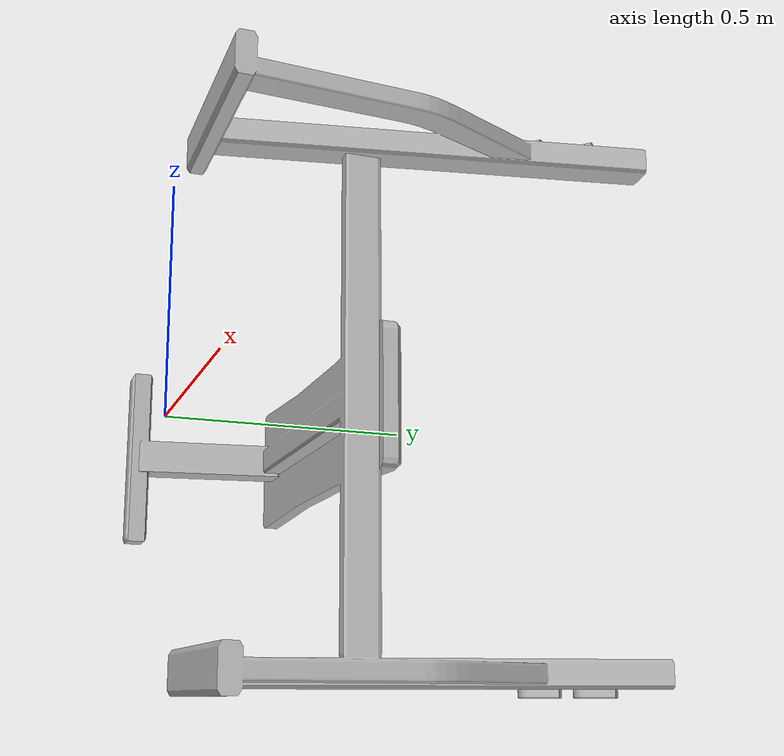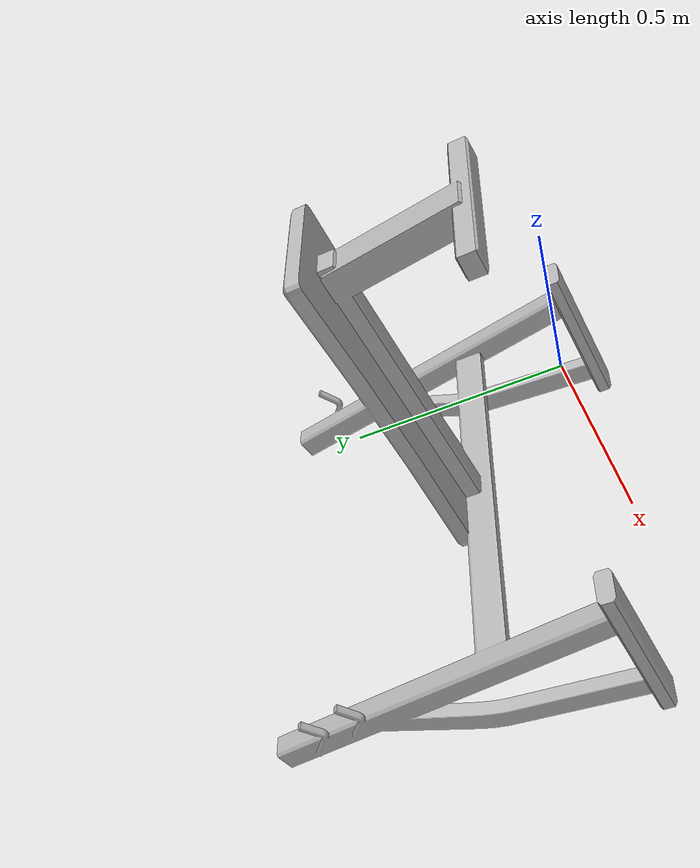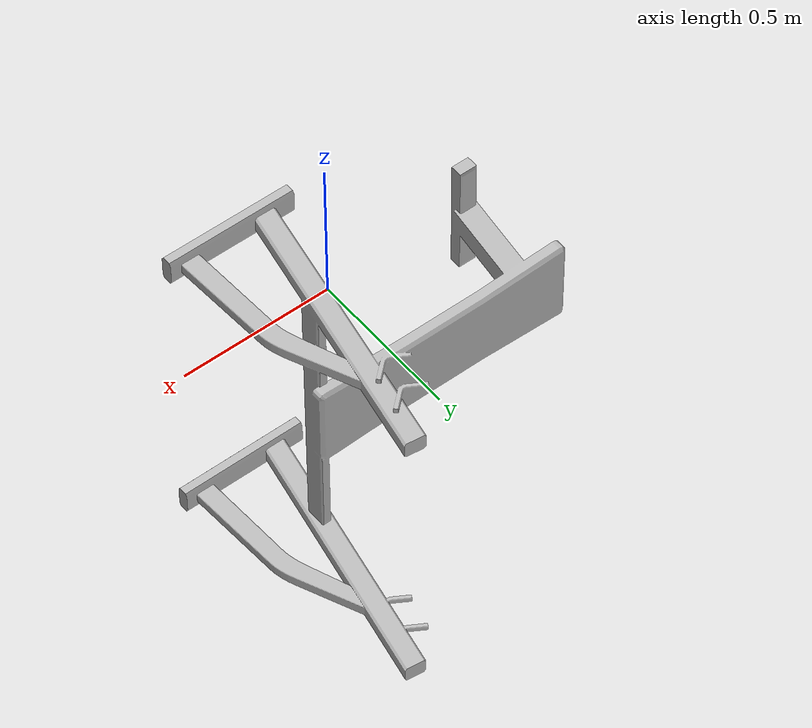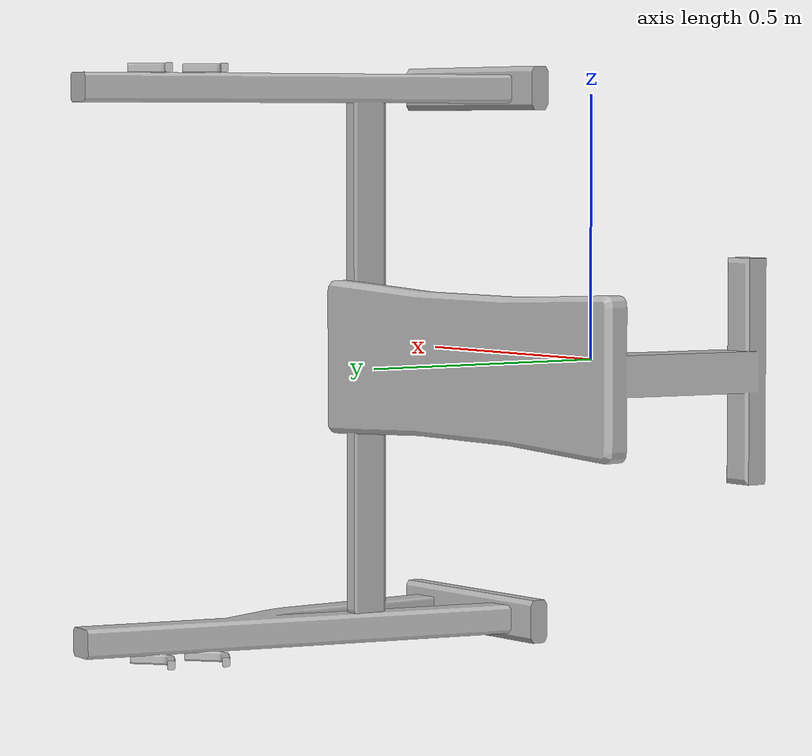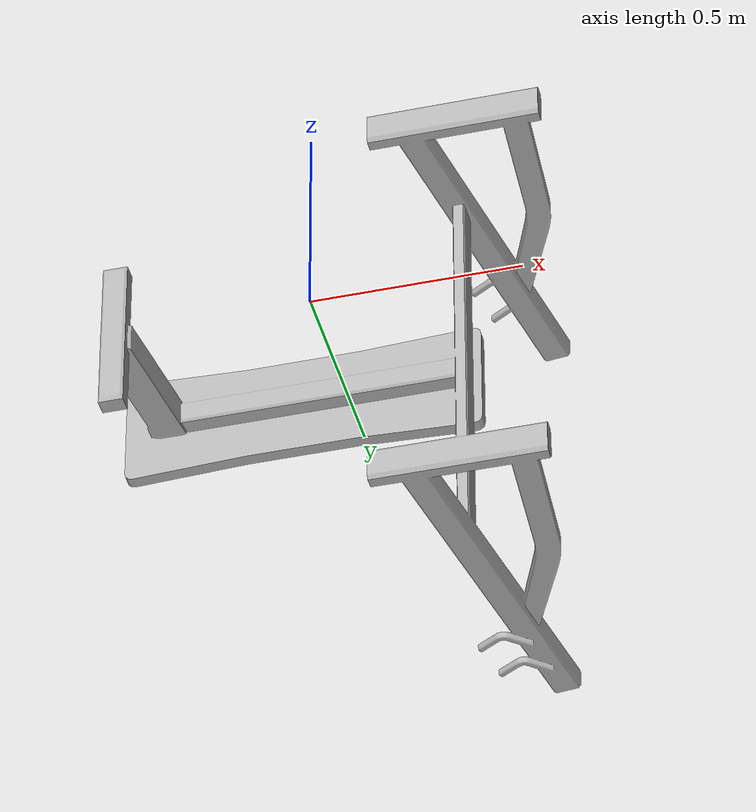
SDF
<?xml version="1.0" ?>
<sdf version="1.6">
  <model name="aws_robomaker_residential_FitnessEquipment_01">
    <link name="link">
      <inertial>
	<inertia>
          <ixx>1</ixx>
          <ixy>0</ixy>
          <ixz>0</ixz>
          <iyy>1</iyy>
          <iyz>0</iyz>
          <izz>1</izz>
        </inertia>
        <mass>80</mass>
      </inertial>
      <collision name="collision">
        <geometry>
          <mesh>
<uri>model://aws_robomaker_residential_FitnessEquipment_01/meshes/object.obj</uri>
            <scale>1 1 1</scale>
          </mesh>
        </geometry>
      </collision>
      <visual name="visual">
	    <geometry>
          <mesh>
<uri>model://aws_robomaker_residential_FitnessEquipment_01/meshes/object.obj</uri>
          </mesh>
        </geometry>
      <meta> <layer> 1 </layer></meta>
</visual>
    </link>
  <static>1</static>
  </model>
</sdf>
